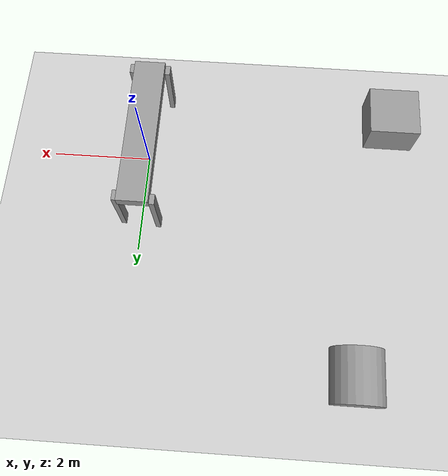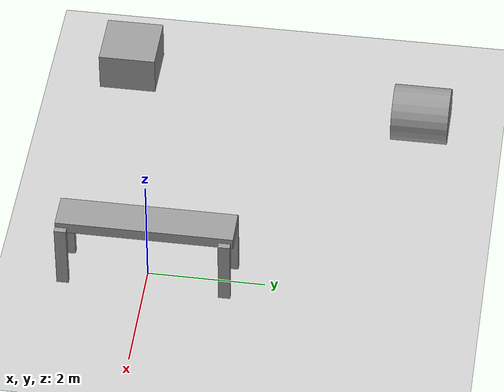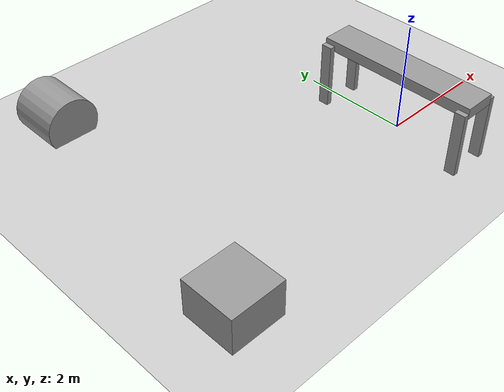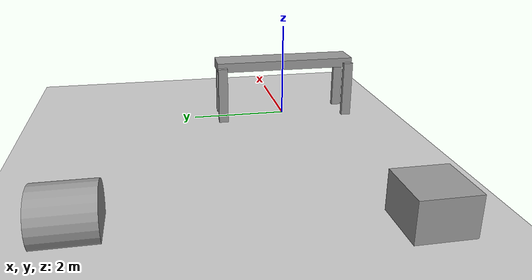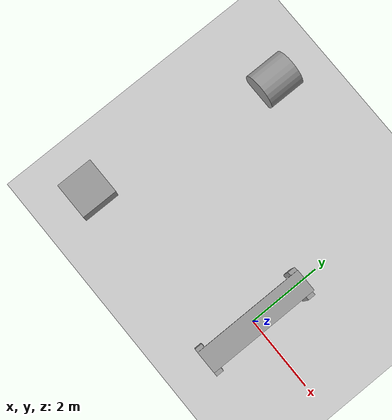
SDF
<sdf version="1.7">
 <world name="default">
  <light name="sun" type="directional">
   <pose>0 0 10 0 -0 0</pose>
   <diffuse>0.8 0.8 0.8 1</diffuse>
   <specular>0.2 0.2 0.2 1</specular>
   <attenuation>
    <range>1000</range>
    <constant>0.9</constant>
    <linear>0.01</linear>
    <quadratic>0.001</quadratic>
   </attenuation>
   <direction>-0.5 0.1 -0.9</direction>
   <spot><inner_angle>0</inner_angle><outer_angle>0</outer_angle><falloff>0</falloff></spot>
  </light>
  <model name="ground_plane">
   <static>1</static>
   <link name="link">
    <collision name="collision">
     <geometry><plane><normal>0 0 1</normal><size>100 100</size></plane></geometry>
     <surface>
      <contact><collide_bitmask>65535</collide_bitmask></contact>
      <friction><ode><mu>100</mu><mu2>50</mu2></ode></friction>
     </surface>
    </collision>
    <visual name="visual">
     <cast_shadows>0</cast_shadows>
     <geometry><plane><normal>0 0 1</normal><size>100 100</size></plane></geometry>
     <material>
      <script><uri>file://media/materials/scripts/gazebo.material</uri><name>Gazebo/Grey</name></script>
     </material>
    </visual>
   </link>
  </model>
  <gravity>0 0 -9.8</gravity>
  <magnetic_field>6e-06 2.3e-05 -4.2e-05</magnetic_field>
  <atmosphere type="adiabatic"/>
  <physics type="ode">
   <max_step_size>0.001</max_step_size>
   <real_time_factor>1</real_time_factor>
   <real_time_update_rate>1000</real_time_update_rate>
  </physics>
  <scene><ambient>0.4 0.4 0.4 1</ambient><background>0.7 0.7 0.7 1</background><shadows>1</shadows></scene>
  <spherical_coordinates>
   <surface_model>EARTH_WGS84</surface_model>
   <latitude_deg>0</latitude_deg>
   <longitude_deg>0</longitude_deg>
   <elevation>0</elevation>
   <heading_deg>0</heading_deg>
  </spherical_coordinates>
  <model name="unit_cylinder">
   <pose>-4.25627 4.20601 0.266723 1.5708 -0 0</pose>
   <link name="link">
    <inertial>
     <mass>1</mass>
     <inertia><ixx>0.145833</ixx><ixy>0</ixy><ixz>0</ixz><iyy>0.145833</iyy><iyz>0</iyz><izz>0.125</izz></inertia>
    </inertial>
    <collision name="collision">
     <geometry><cylinder><radius>0.499999</radius><length>0.999998</length></cylinder></geometry>
    </collision>
    <visual name="visual">
     <geometry><cylinder><radius>0.499999</radius><length>0.999998</length></cylinder></geometry>
     <material>
      <script><name>Gazebo/Grey</name><uri>file://media/materials/scripts/gazebo.material</uri></script>
     </material>
    </visual>
   </link>
  </model>
  <model name="unit_box">
   <pose>-5.00178 -1.09458 0.201818 0 -0 0</pose>
   <link name="link">
    <inertial>
     <mass>1</mass>
     <inertia>
      <ixx>0.166667</ixx>
      <ixy>0</ixy>
      <ixz>0</ixz>
      <iyy>0.166667</iyy>
      <iyz>0</iyz>
      <izz>0.166667</izz>
     </inertia>
    </inertial>
    <collision name="collision"><geometry><box><size>1 1 1</size></box></geometry></collision>
    <visual name="visual">
     <geometry><box><size>1 1 1</size></box></geometry>
     <material>
      <script><name>Gazebo/Grey</name><uri>file://media/materials/scripts/gazebo.material</uri></script>
     </material>
    </visual>
   </link>
  </model>
  <model name="trolley">
   <link name="link_0">
    <inertial>
     <mass>1</mass>
     <inertia>
      <ixx>0.166667</ixx>
      <ixy>0</ixy>
      <ixz>0</ixz>
      <iyy>0.166667</iyy>
      <iyz>0</iyz>
      <izz>0.166667</izz>
     </inertia>
    </inertial>
    <pose>0 0.008 0.452854 0 -0 0</pose>
    <visual name="visual">
     <geometry><box><size>0.6 3 0.2</size></box></geometry>
     <material>
      <lighting>1</lighting>
      <script><uri>file://media/materials/scripts/gazebo.material</uri><name>Gazebo/Grey</name></script>
      <shader type="pixel"><normal_map>__default__</normal_map></shader>
      <ambient>0.3 0.3 0.3 1</ambient>
      <diffuse>0.7 0.7 0.7 1</diffuse>
      <specular>0.01 0.01 0.01 1</specular>
      <emissive>0 0 0 1</emissive>
     </material>
    </visual>
    <collision name="collision">
     <geometry><box><size>0.6 3 0.2</size></box></geometry>
     <surface>
      <friction>
       <ode><mu>1</mu><mu2>1</mu2><fdir1>0 0 0</fdir1><slip1>0</slip1><slip2>0</slip2></ode>
       <torsional>
        <coefficient>1</coefficient>
        <patch_radius>0</patch_radius>
        <surface_radius>0</surface_radius>
        <use_patch_radius>1</use_patch_radius>
        <ode><slip>0</slip></ode>
       </torsional>
      </friction>
      <bounce><restitution_coefficient>0</restitution_coefficient><threshold>1e+06</threshold></bounce>
      <contact>
       <collide_without_contact>0</collide_without_contact>
       <collide_without_contact_bitmask>1</collide_without_contact_bitmask>
       <collide_bitmask>1</collide_bitmask>
       <ode>
        <soft_cfm>0</soft_cfm>
        <soft_erp>0.2</soft_erp>
        <kp>1e+13</kp>
        <kd>1</kd>
        <max_vel>0.01</max_vel>
        <min_depth>0</min_depth>
       </ode>
       <bullet>
        <split_impulse>1</split_impulse>
        <split_impulse_penetration_threshold>-0.01</split_impulse_penetration_threshold>
        <soft_cfm>0</soft_cfm>
        <soft_erp>0.2</soft_erp>
        <kp>1e+13</kp>
        <kd>1</kd>
       </bullet>
      </contact>
     </surface>
    </collision>
   </link>
   <link name="link_1">
    <inertial>
     <mass>1</mass>
     <inertia>
      <ixx>0.166667</ixx>
      <ixy>0</ixy>
      <ixz>0</ixz>
      <iyy>0.166667</iyy>
      <iyz>0</iyz>
      <izz>0.166667</izz>
     </inertia>
    </inertial>
    <pose>0.35 1.368 -0.147146 0 -0 0</pose>
    <visual name="visual">
     <geometry><box><size>0.1 0.2 1.2</size></box></geometry>
     <material>
      <lighting>1</lighting>
      <script><uri>file://media/materials/scripts/gazebo.material</uri><name>Gazebo/Grey</name></script>
      <shader type="pixel"><normal_map>__default__</normal_map></shader>
      <ambient>0.3 0.3 0.3 1</ambient>
      <diffuse>0.7 0.7 0.7 1</diffuse>
      <specular>0.01 0.01 0.01 1</specular>
      <emissive>0 0 0 1</emissive>
     </material>
    </visual>
    <collision name="collision">
     <geometry><box><size>0.1 0.2 1.2</size></box></geometry>
     <surface>
      <friction>
       <ode><mu>1</mu><mu2>1</mu2><fdir1>0 0 0</fdir1><slip1>0</slip1><slip2>0</slip2></ode>
       <torsional>
        <coefficient>1</coefficient>
        <patch_radius>0</patch_radius>
        <surface_radius>0</surface_radius>
        <use_patch_radius>1</use_patch_radius>
        <ode><slip>0</slip></ode>
       </torsional>
      </friction>
      <bounce><restitution_coefficient>0</restitution_coefficient><threshold>1e+06</threshold></bounce>
      <contact>
       <collide_without_contact>0</collide_without_contact>
       <collide_without_contact_bitmask>1</collide_without_contact_bitmask>
       <collide_bitmask>1</collide_bitmask>
       <ode>
        <soft_cfm>0</soft_cfm>
        <soft_erp>0.2</soft_erp>
        <kp>1e+13</kp>
        <kd>1</kd>
        <max_vel>0.01</max_vel>
        <min_depth>0</min_depth>
       </ode>
       <bullet>
        <split_impulse>1</split_impulse>
        <split_impulse_penetration_threshold>-0.01</split_impulse_penetration_threshold>
        <soft_cfm>0</soft_cfm>
        <soft_erp>0.2</soft_erp>
        <kp>1e+13</kp>
        <kd>1</kd>
       </bullet>
      </contact>
     </surface>
    </collision>
   </link>
   <link name="link_1_clone">
    <inertial>
     <mass>1</mass>
     <inertia>
      <ixx>0.166667</ixx>
      <ixy>0</ixy>
      <ixz>0</ixz>
      <iyy>0.166667</iyy>
      <iyz>0</iyz>
      <izz>0.166667</izz>
     </inertia>
    </inertial>
    <pose>-0.35 1.408 -0.147146 0 -0 0</pose>
    <visual name="visual">
     <geometry><box><size>0.1 0.2 1.2</size></box></geometry>
     <material>
      <lighting>1</lighting>
      <script><uri>file://media/materials/scripts/gazebo.material</uri><name>Gazebo/Grey</name></script>
      <shader type="pixel"><normal_map>__default__</normal_map></shader>
      <ambient>0.3 0.3 0.3 1</ambient>
      <diffuse>0.7 0.7 0.7 1</diffuse>
      <specular>0.01 0.01 0.01 1</specular>
      <emissive>0 0 0 1</emissive>
     </material>
    </visual>
    <collision name="collision">
     <geometry><box><size>0.1 0.2 1.2</size></box></geometry>
     <surface>
      <friction>
       <ode><mu>1</mu><mu2>1</mu2><fdir1>0 0 0</fdir1><slip1>0</slip1><slip2>0</slip2></ode>
       <torsional>
        <coefficient>1</coefficient>
        <patch_radius>0</patch_radius>
        <surface_radius>0</surface_radius>
        <use_patch_radius>1</use_patch_radius>
        <ode><slip>0</slip></ode>
       </torsional>
      </friction>
      <bounce><restitution_coefficient>0</restitution_coefficient><threshold>1e+06</threshold></bounce>
      <contact>
       <collide_without_contact>0</collide_without_contact>
       <collide_without_contact_bitmask>1</collide_without_contact_bitmask>
       <collide_bitmask>1</collide_bitmask>
       <ode>
        <soft_cfm>0</soft_cfm>
        <soft_erp>0.2</soft_erp>
        <kp>1e+13</kp>
        <kd>1</kd>
        <max_vel>0.01</max_vel>
        <min_depth>0</min_depth>
       </ode>
       <bullet>
        <split_impulse>1</split_impulse>
        <split_impulse_penetration_threshold>-0.01</split_impulse_penetration_threshold>
        <soft_cfm>0</soft_cfm>
        <soft_erp>0.2</soft_erp>
        <kp>1e+13</kp>
        <kd>1</kd>
       </bullet>
      </contact>
     </surface>
    </collision>
   </link>
   <link name="link_1_clone_0">
    <inertial>
     <mass>1</mass>
     <inertia>
      <ixx>0.166667</ixx>
      <ixy>0</ixy>
      <ixz>0</ixz>
      <iyy>0.166667</iyy>
      <iyz>0</iyz>
      <izz>0.166667</izz>
     </inertia>
    </inertial>
    <pose>0.35 -1.392 -0.147146 0 -0 0</pose>
    <visual name="visual">
     <geometry><box><size>0.1 0.2 1.2</size></box></geometry>
     <material>
      <lighting>1</lighting>
      <script><uri>file://media/materials/scripts/gazebo.material</uri><name>Gazebo/Grey</name></script>
      <shader type="pixel"><normal_map>__default__</normal_map></shader>
      <ambient>0.3 0.3 0.3 1</ambient>
      <diffuse>0.7 0.7 0.7 1</diffuse>
      <specular>0.01 0.01 0.01 1</specular>
      <emissive>0 0 0 1</emissive>
     </material>
    </visual>
    <collision name="collision">
     <geometry><box><size>0.1 0.2 1.2</size></box></geometry>
     <surface>
      <friction>
       <ode><mu>1</mu><mu2>1</mu2><fdir1>0 0 0</fdir1><slip1>0</slip1><slip2>0</slip2></ode>
       <torsional>
        <coefficient>1</coefficient>
        <patch_radius>0</patch_radius>
        <surface_radius>0</surface_radius>
        <use_patch_radius>1</use_patch_radius>
        <ode><slip>0</slip></ode>
       </torsional>
      </friction>
      <bounce><restitution_coefficient>0</restitution_coefficient><threshold>1e+06</threshold></bounce>
      <contact>
       <collide_without_contact>0</collide_without_contact>
       <collide_without_contact_bitmask>1</collide_without_contact_bitmask>
       <collide_bitmask>1</collide_bitmask>
       <ode>
        <soft_cfm>0</soft_cfm>
        <soft_erp>0.2</soft_erp>
        <kp>1e+13</kp>
        <kd>1</kd>
        <max_vel>0.01</max_vel>
        <min_depth>0</min_depth>
       </ode>
       <bullet>
        <split_impulse>1</split_impulse>
        <split_impulse_penetration_threshold>-0.01</split_impulse_penetration_threshold>
        <soft_cfm>0</soft_cfm>
        <soft_erp>0.2</soft_erp>
        <kp>1e+13</kp>
        <kd>1</kd>
       </bullet>
      </contact>
     </surface>
    </collision>
   </link>
   <link name="link_1_clone_1">
    <inertial>
     <mass>1</mass>
     <inertia>
      <ixx>0.166667</ixx>
      <ixy>0</ixy>
      <ixz>0</ixz>
      <iyy>0.166667</iyy>
      <iyz>0</iyz>
      <izz>0.166667</izz>
     </inertia>
    </inertial>
    <pose>-0.35 -1.392 -0.147146 0 -0 0</pose>
    <visual name="visual">
     <geometry><box><size>0.1 0.2 1.2</size></box></geometry>
     <material>
      <lighting>1</lighting>
      <script><uri>file://media/materials/scripts/gazebo.material</uri><name>Gazebo/Grey</name></script>
      <shader type="pixel"><normal_map>__default__</normal_map></shader>
      <ambient>0.3 0.3 0.3 1</ambient>
      <diffuse>0.7 0.7 0.7 1</diffuse>
      <specular>0.01 0.01 0.01 1</specular>
      <emissive>0 0 0 1</emissive>
     </material>
    </visual>
    <collision name="collision">
     <geometry><box><size>0.1 0.2 1.2</size></box></geometry>
     <surface>
      <friction>
       <ode><mu>1</mu><mu2>1</mu2><fdir1>0 0 0</fdir1><slip1>0</slip1><slip2>0</slip2></ode>
       <torsional>
        <coefficient>1</coefficient>
        <patch_radius>0</patch_radius>
        <surface_radius>0</surface_radius>
        <use_patch_radius>1</use_patch_radius>
        <ode><slip>0</slip></ode>
       </torsional>
      </friction>
      <bounce><restitution_coefficient>0</restitution_coefficient><threshold>1e+06</threshold></bounce>
      <contact>
       <collide_without_contact>0</collide_without_contact>
       <collide_without_contact_bitmask>1</collide_without_contact_bitmask>
       <collide_bitmask>1</collide_bitmask>
       <ode>
        <soft_cfm>0</soft_cfm>
        <soft_erp>0.2</soft_erp>
        <kp>1e+13</kp>
        <kd>1</kd>
        <max_vel>0.01</max_vel>
        <min_depth>0</min_depth>
       </ode>
       <bullet>
        <split_impulse>1</split_impulse>
        <split_impulse_penetration_threshold>-0.01</split_impulse_penetration_threshold>
        <soft_cfm>0</soft_cfm>
        <soft_erp>0.2</soft_erp>
        <kp>1e+13</kp>
        <kd>1</kd>
       </bullet>
      </contact>
     </surface>
    </collision>
   </link>
   <joint name="link_0_JOINT_0" type="fixed">
    <parent>link_0</parent>
    <child>link_1</child>
    <physics>
     <ode><limit><cfm>0</cfm><erp>0.2</erp></limit><suspension><cfm>0</cfm><erp>0.2</erp></suspension></ode>
    </physics>
   </joint>
   <joint name="link_0_JOINT_1" type="fixed">
    <parent>link_0</parent>
    <child>link_1_clone</child>
    <physics>
     <ode><limit><cfm>0</cfm><erp>0.2</erp></limit><suspension><cfm>0</cfm><erp>0.2</erp></suspension></ode>
    </physics>
   </joint>
   <joint name="link_0_JOINT_2" type="fixed">
    <parent>link_0</parent>
    <child>link_1_clone_0</child>
    <physics>
     <ode><limit><cfm>0</cfm><erp>0.2</erp></limit><suspension><cfm>0</cfm><erp>0.2</erp></suspension></ode>
    </physics>
   </joint>
   <joint name="link_0_JOINT_3" type="fixed">
    <parent>link_0</parent>
    <child>link_1_clone_1</child>
    <physics>
     <ode><limit><cfm>0</cfm><erp>0.2</erp></limit><suspension><cfm>0</cfm><erp>0.2</erp></suspension></ode>
    </physics>
   </joint>
   <static>0</static>
   <pose>4.2e-05 -0.008114 0.747145 0 -6e-06 -0.000166</pose>
  </model>
 </world>
</sdf>
